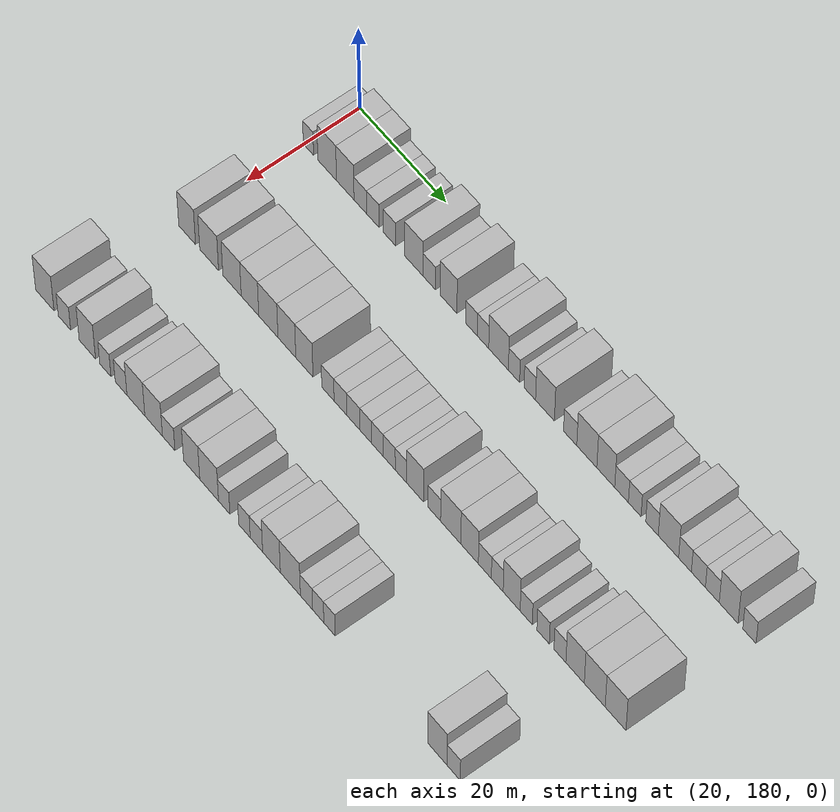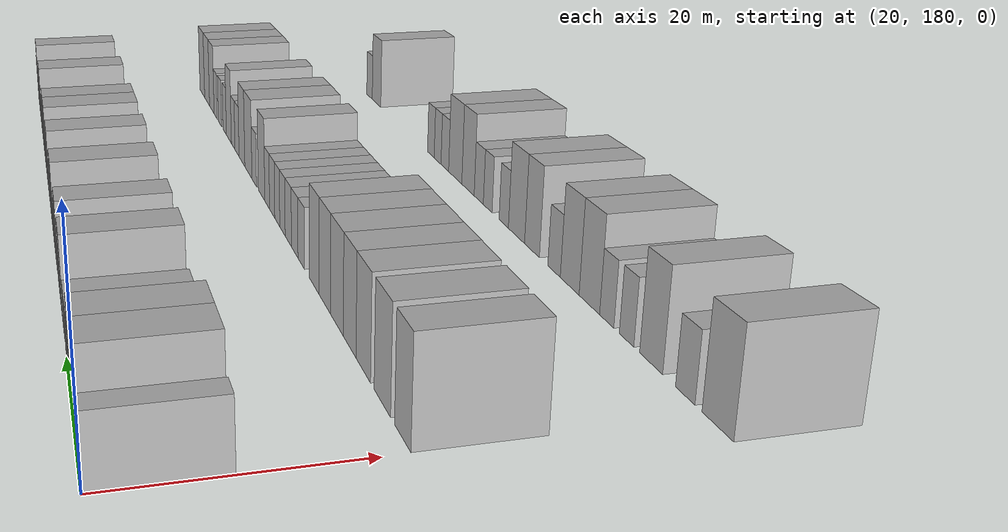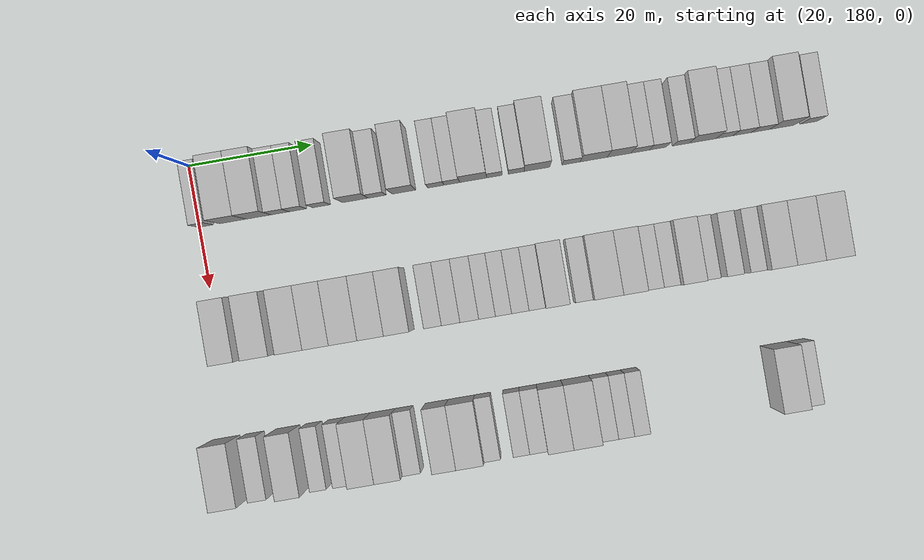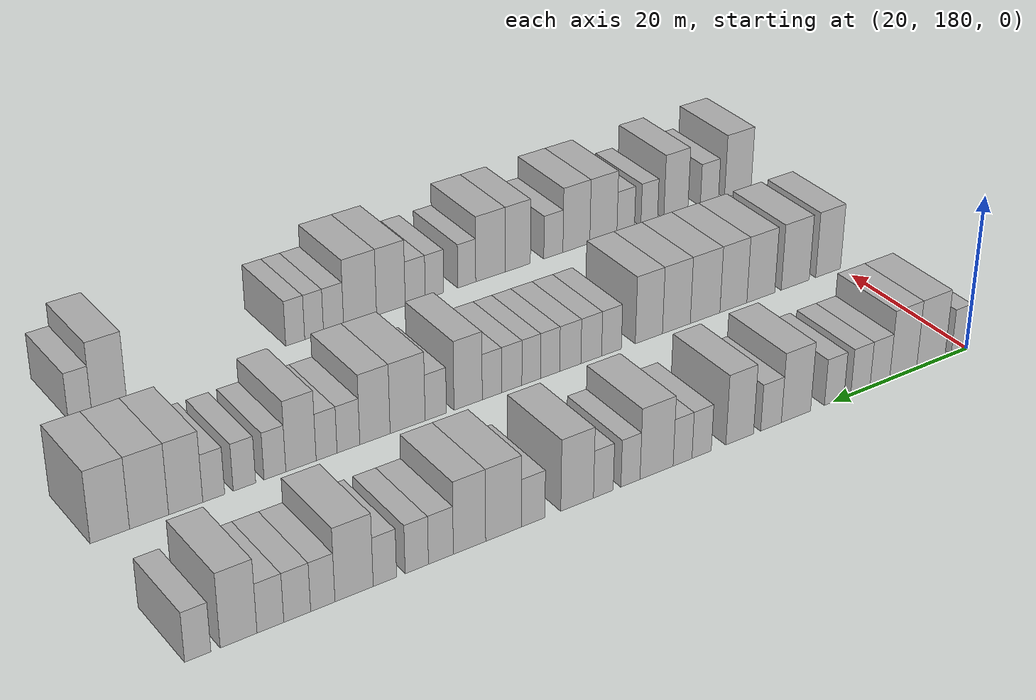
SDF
<sdf version="1.6">
 <world name="default">
  <model name="building_147">
   <static>1</static>
   <pose>25.0000 181.1279 0 0.000000 0.000000 0.000000</pose>
   <link name="link">
    <pose>0 0 3.00 0 0 0</pose>
    <collision name="collision"><geometry><box><size>10.0000 2.4109 6.0000</size></box></geometry></collision>
    <visual name="visual">
     <cast_shadows>0</cast_shadows>
     <geometry><box><size>10.0000 2.4109 6.0000</size></box></geometry>
     <material>
      <script>
       <uri>model://HANNAS_wall/materials/scripts</uri>
       <uri>model://HANNAS_wall/materials/textures</uri>
       <name>vrc/HANNAS_wall</name>
      </script>
     </material>
    </visual>
   </link>
  </model>
  <model name="building_148">
   <static>1</static>
   <pose>25.0000 185.4999 0 0.000000 0.000000 0.000000</pose>
   <link name="link">
    <pose>0 0 4.50 0 0 0</pose>
    <collision name="collision"><geometry><box><size>10.0000 4.3331 9.0000</size></box></geometry></collision>
    <visual name="visual">
     <cast_shadows>0</cast_shadows>
     <geometry><box><size>10.0000 4.3331 9.0000</size></box></geometry>
     <material>
      <script>
       <uri>model://HANNAS_wall/materials/scripts</uri>
       <uri>model://HANNAS_wall/materials/textures</uri>
       <name>vrc/HANNAS_wall</name>
      </script>
     </material>
    </visual>
   </link>
  </model>
  <model name="building_149">
   <static>1</static>
   <pose>25.0000 189.7007 0 0.000000 0.000000 0.000000</pose>
   <link name="link">
    <pose>0 0 4.50 0 0 0</pose>
    <collision name="collision"><geometry><box><size>10.0000 4.0684 9.0000</size></box></geometry></collision>
    <visual name="visual">
     <cast_shadows>0</cast_shadows>
     <geometry><box><size>10.0000 4.0684 9.0000</size></box></geometry>
     <material>
      <script>
       <uri>model://HANNAS_wall/materials/scripts</uri>
       <uri>model://HANNAS_wall/materials/textures</uri>
       <name>vrc/HANNAS_wall</name>
      </script>
     </material>
    </visual>
   </link>
  </model>
  <model name="building_150">
   <static>1</static>
   <pose>25.0000 193.2006 0 0.000000 0.000000 0.000000</pose>
   <link name="link">
    <pose>0 0 3.00 0 0 0</pose>
    <collision name="collision"><geometry><box><size>10.0000 2.9314 6.0000</size></box></geometry></collision>
    <visual name="visual">
     <cast_shadows>0</cast_shadows>
     <geometry><box><size>10.0000 2.9314 6.0000</size></box></geometry>
     <material>
      <script>
       <uri>model://HANNAS_wall/materials/scripts</uri>
       <uri>model://HANNAS_wall/materials/textures</uri>
       <name>vrc/HANNAS_wall</name>
      </script>
     </material>
    </visual>
   </link>
  </model>
  <model name="building_151">
   <static>1</static>
   <pose>25.0000 196.0848 0 0.000000 0.000000 0.000000</pose>
   <link name="link">
    <pose>0 0 3.00 0 0 0</pose>
    <collision name="collision"><geometry><box><size>10.0000 2.8371 6.0000</size></box></geometry></collision>
    <visual name="visual">
     <cast_shadows>0</cast_shadows>
     <geometry><box><size>10.0000 2.8371 6.0000</size></box></geometry>
     <material>
      <script>
       <uri>model://HANNAS_wall/materials/scripts</uri>
       <uri>model://HANNAS_wall/materials/textures</uri>
       <name>vrc/HANNAS_wall</name>
      </script>
     </material>
    </visual>
   </link>
  </model>
  <model name="building_152">
   <static>1</static>
   <pose>25.0000 199.9250 0 0.000000 0.000000 0.000000</pose>
   <link name="link">
    <pose>0 0 3.00 0 0 0</pose>
    <collision name="collision"><geometry><box><size>10.0000 2.8434 6.0000</size></box></geometry></collision>
    <visual name="visual">
     <cast_shadows>0</cast_shadows>
     <geometry><box><size>10.0000 2.8434 6.0000</size></box></geometry>
     <material>
      <script>
       <uri>model://HANNAS_wall/materials/scripts</uri>
       <uri>model://HANNAS_wall/materials/textures</uri>
       <name>vrc/HANNAS_wall</name>
      </script>
     </material>
    </visual>
   </link>
  </model>
  <model name="building_153">
   <static>1</static>
   <pose>25.0000 205.4340 0 0.000000 0.000000 0.000000</pose>
   <link name="link">
    <pose>0 0 4.50 0 0 0</pose>
    <collision name="collision"><geometry><box><size>10.0000 4.1745 9.0000</size></box></geometry></collision>
    <visual name="visual">
     <cast_shadows>0</cast_shadows>
     <geometry><box><size>10.0000 4.1745 9.0000</size></box></geometry>
     <material>
      <script>
       <uri>model://HANNAS_wall/materials/scripts</uri>
       <uri>model://HANNAS_wall/materials/textures</uri>
       <name>vrc/HANNAS_wall</name>
      </script>
     </material>
    </visual>
   </link>
  </model>
  <model name="building_154">
   <static>1</static>
   <pose>25.0000 208.9801 0 0.000000 0.000000 0.000000</pose>
   <link name="link">
    <pose>0 0 3.00 0 0 0</pose>
    <collision name="collision"><geometry><box><size>10.0000 2.9176 6.0000</size></box></geometry></collision>
    <visual name="visual">
     <cast_shadows>0</cast_shadows>
     <geometry><box><size>10.0000 2.9176 6.0000</size></box></geometry>
     <material>
      <script>
       <uri>model://HANNAS_wall/materials/scripts</uri>
       <uri>model://HANNAS_wall/materials/textures</uri>
       <name>vrc/HANNAS_wall</name>
      </script>
     </material>
    </visual>
   </link>
  </model>
  <model name="building_155">
   <static>1</static>
   <pose>25.0000 213.3540 0 0.000000 0.000000 0.000000</pose>
   <link name="link">
    <pose>0 0 4.50 0 0 0</pose>
    <collision name="collision"><geometry><box><size>10.0000 3.8302 9.0000</size></box></geometry></collision>
    <visual name="visual">
     <cast_shadows>0</cast_shadows>
     <geometry><box><size>10.0000 3.8302 9.0000</size></box></geometry>
     <material>
      <script>
       <uri>model://HANNAS_wall/materials/scripts</uri>
       <uri>model://HANNAS_wall/materials/textures</uri>
       <name>vrc/HANNAS_wall</name>
      </script>
     </material>
    </visual>
   </link>
  </model>
  <model name="building_156">
   <static>1</static>
   <pose>25.0000 218.5806 0 0.000000 0.000000 0.000000</pose>
   <link name="link">
    <pose>0 0 3.00 0 0 0</pose>
    <collision name="collision"><geometry><box><size>10.0000 2.6231 6.0000</size></box></geometry></collision>
    <visual name="visual">
     <cast_shadows>0</cast_shadows>
     <geometry><box><size>10.0000 2.6231 6.0000</size></box></geometry>
     <material>
      <script>
       <uri>model://HANNAS_wall/materials/scripts</uri>
       <uri>model://HANNAS_wall/materials/textures</uri>
       <name>vrc/HANNAS_wall</name>
      </script>
     </material>
    </visual>
   </link>
  </model>
  <model name="building_157">
   <static>1</static>
   <pose>25.0000 221.1598 0 0.000000 0.000000 0.000000</pose>
   <link name="link">
    <pose>0 0 3.00 0 0 0</pose>
    <collision name="collision"><geometry><box><size>10.0000 2.5354 6.0000</size></box></geometry></collision>
    <visual name="visual">
     <cast_shadows>0</cast_shadows>
     <geometry><box><size>10.0000 2.5354 6.0000</size></box></geometry>
     <material>
      <script>
       <uri>model://HANNAS_wall/materials/scripts</uri>
       <uri>model://HANNAS_wall/materials/textures</uri>
       <name>vrc/HANNAS_wall</name>
      </script>
     </material>
    </visual>
   </link>
  </model>
  <model name="building_158">
   <static>1</static>
   <pose>25.0000 224.6276 0 0.000000 0.000000 0.000000</pose>
   <link name="link">
    <pose>0 0 4.50 0 0 0</pose>
    <collision name="collision"><geometry><box><size>10.0000 4.4003 9.0000</size></box></geometry></collision>
    <visual name="visual">
     <cast_shadows>0</cast_shadows>
     <geometry><box><size>10.0000 4.4003 9.0000</size></box></geometry>
     <material>
      <script>
       <uri>model://HANNAS_wall/materials/scripts</uri>
       <uri>model://HANNAS_wall/materials/textures</uri>
       <name>vrc/HANNAS_wall</name>
      </script>
     </material>
    </visual>
   </link>
  </model>
  <model name="building_159">
   <static>1</static>
   <pose>25.0000 228.0786 0 0.000000 0.000000 0.000000</pose>
   <link name="link">
    <pose>0 0 3.00 0 0 0</pose>
    <collision name="collision"><geometry><box><size>10.0000 2.5018 6.0000</size></box></geometry></collision>
    <visual name="visual">
     <cast_shadows>0</cast_shadows>
     <geometry><box><size>10.0000 2.5018 6.0000</size></box></geometry>
     <material>
      <script>
       <uri>model://HANNAS_wall/materials/scripts</uri>
       <uri>model://HANNAS_wall/materials/textures</uri>
       <name>vrc/HANNAS_wall</name>
      </script>
     </material>
    </visual>
   </link>
  </model>
  <model name="building_160">
   <static>1</static>
   <pose>25.0000 231.6056 0 0.000000 0.000000 0.000000</pose>
   <link name="link">
    <pose>0 0 3.00 0 0 0</pose>
    <collision name="collision"><geometry><box><size>10.0000 2.5521 6.0000</size></box></geometry></collision>
    <visual name="visual">
     <cast_shadows>0</cast_shadows>
     <geometry><box><size>10.0000 2.5521 6.0000</size></box></geometry>
     <material>
      <script>
       <uri>model://HANNAS_wall/materials/scripts</uri>
       <uri>model://HANNAS_wall/materials/textures</uri>
       <name>vrc/HANNAS_wall</name>
      </script>
     </material>
    </visual>
   </link>
  </model>
  <model name="building_161">
   <static>1</static>
   <pose>25.0000 234.9691 0 0.000000 0.000000 0.000000</pose>
   <link name="link">
    <pose>0 0 4.50 0 0 0</pose>
    <collision name="collision"><geometry><box><size>10.0000 4.1749 9.0000</size></box></geometry></collision>
    <visual name="visual">
     <cast_shadows>0</cast_shadows>
     <geometry><box><size>10.0000 4.1749 9.0000</size></box></geometry>
     <material>
      <script>
       <uri>model://HANNAS_wall/materials/scripts</uri>
       <uri>model://HANNAS_wall/materials/textures</uri>
       <name>vrc/HANNAS_wall</name>
      </script>
     </material>
    </visual>
   </link>
  </model>
  <model name="building_162">
   <static>1</static>
   <pose>25.0000 240.5236 0 0.000000 0.000000 0.000000</pose>
   <link name="link">
    <pose>0 0 3.00 0 0 0</pose>
    <collision name="collision"><geometry><box><size>10.0000 2.9343 6.0000</size></box></geometry></collision>
    <visual name="visual">
     <cast_shadows>0</cast_shadows>
     <geometry><box><size>10.0000 2.9343 6.0000</size></box></geometry>
     <material>
      <script>
       <uri>model://HANNAS_wall/materials/scripts</uri>
       <uri>model://HANNAS_wall/materials/textures</uri>
       <name>vrc/HANNAS_wall</name>
      </script>
     </material>
    </visual>
   </link>
  </model>
  <model name="building_163">
   <static>1</static>
   <pose>25.0000 244.1888 0 0.000000 0.000000 0.000000</pose>
   <link name="link">
    <pose>0 0 4.50 0 0 0</pose>
    <collision name="collision"><geometry><box><size>10.0000 4.3960 9.0000</size></box></geometry></collision>
    <visual name="visual">
     <cast_shadows>0</cast_shadows>
     <geometry><box><size>10.0000 4.3960 9.0000</size></box></geometry>
     <material>
      <script>
       <uri>model://HANNAS_wall/materials/scripts</uri>
       <uri>model://HANNAS_wall/materials/textures</uri>
       <name>vrc/HANNAS_wall</name>
      </script>
     </material>
    </visual>
   </link>
  </model>
  <model name="building_164">
   <static>1</static>
   <pose>25.0000 248.3428 0 0.000000 0.000000 0.000000</pose>
   <link name="link">
    <pose>0 0 4.50 0 0 0</pose>
    <collision name="collision"><geometry><box><size>10.0000 3.9119 9.0000</size></box></geometry></collision>
    <visual name="visual">
     <cast_shadows>0</cast_shadows>
     <geometry><box><size>10.0000 3.9119 9.0000</size></box></geometry>
     <material>
      <script>
       <uri>model://HANNAS_wall/materials/scripts</uri>
       <uri>model://HANNAS_wall/materials/textures</uri>
       <name>vrc/HANNAS_wall</name>
      </script>
     </material>
    </visual>
   </link>
  </model>
  <model name="building_165">
   <static>1</static>
   <pose>25.0000 251.7863 0 0.000000 0.000000 0.000000</pose>
   <link name="link">
    <pose>0 0 3.00 0 0 0</pose>
    <collision name="collision"><geometry><box><size>10.0000 2.9751 6.0000</size></box></geometry></collision>
    <visual name="visual">
     <cast_shadows>0</cast_shadows>
     <geometry><box><size>10.0000 2.9751 6.0000</size></box></geometry>
     <material>
      <script>
       <uri>model://HANNAS_wall/materials/scripts</uri>
       <uri>model://HANNAS_wall/materials/textures</uri>
       <name>vrc/HANNAS_wall</name>
      </script>
     </material>
    </visual>
   </link>
  </model>
  <model name="building_166">
   <static>1</static>
   <pose>25.0000 254.6488 0 0.000000 0.000000 0.000000</pose>
   <link name="link">
    <pose>0 0 3.00 0 0 0</pose>
    <collision name="collision"><geometry><box><size>10.0000 2.7500 6.0000</size></box></geometry></collision>
    <visual name="visual">
     <cast_shadows>0</cast_shadows>
     <geometry><box><size>10.0000 2.7500 6.0000</size></box></geometry>
     <material>
      <script>
       <uri>model://HANNAS_wall/materials/scripts</uri>
       <uri>model://HANNAS_wall/materials/textures</uri>
       <name>vrc/HANNAS_wall</name>
      </script>
     </material>
    </visual>
   </link>
  </model>
  <model name="building_167">
   <static>1</static>
   <pose>25.0000 258.3813 0 0.000000 0.000000 0.000000</pose>
   <link name="link">
    <pose>0 0 3.00 0 0 0</pose>
    <collision name="collision"><geometry><box><size>10.0000 2.7150 6.0000</size></box></geometry></collision>
    <visual name="visual">
     <cast_shadows>0</cast_shadows>
     <geometry><box><size>10.0000 2.7150 6.0000</size></box></geometry>
     <material>
      <script>
       <uri>model://HANNAS_wall/materials/scripts</uri>
       <uri>model://HANNAS_wall/materials/textures</uri>
       <name>vrc/HANNAS_wall</name>
      </script>
     </material>
    </visual>
   </link>
  </model>
  <model name="building_168">
   <static>1</static>
   <pose>25.0000 261.9327 0 0.000000 0.000000 0.000000</pose>
   <link name="link">
    <pose>0 0 4.50 0 0 0</pose>
    <collision name="collision"><geometry><box><size>10.0000 4.3878 9.0000</size></box></geometry></collision>
    <visual name="visual">
     <cast_shadows>0</cast_shadows>
     <geometry><box><size>10.0000 4.3878 9.0000</size></box></geometry>
     <material>
      <script>
       <uri>model://HANNAS_wall/materials/scripts</uri>
       <uri>model://HANNAS_wall/materials/textures</uri>
       <name>vrc/HANNAS_wall</name>
      </script>
     </material>
    </visual>
   </link>
  </model>
  <model name="building_169">
   <static>1</static>
   <pose>25.0000 265.4963 0 0.000000 0.000000 0.000000</pose>
   <link name="link">
    <pose>0 0 3.00 0 0 0</pose>
    <collision name="collision"><geometry><box><size>10.0000 2.7393 6.0000</size></box></geometry></collision>
    <visual name="visual">
     <cast_shadows>0</cast_shadows>
     <geometry><box><size>10.0000 2.7393 6.0000</size></box></geometry>
     <material>
      <script>
       <uri>model://HANNAS_wall/materials/scripts</uri>
       <uri>model://HANNAS_wall/materials/textures</uri>
       <name>vrc/HANNAS_wall</name>
      </script>
     </material>
    </visual>
   </link>
  </model>
  <model name="building_170">
   <static>1</static>
   <pose>25.0000 268.3650 0 0.000000 0.000000 0.000000</pose>
   <link name="link">
    <pose>0 0 3.00 0 0 0</pose>
    <collision name="collision"><geometry><box><size>10.0000 2.9982 6.0000</size></box></geometry></collision>
    <visual name="visual">
     <cast_shadows>0</cast_shadows>
     <geometry><box><size>10.0000 2.9982 6.0000</size></box></geometry>
     <material>
      <script>
       <uri>model://HANNAS_wall/materials/scripts</uri>
       <uri>model://HANNAS_wall/materials/textures</uri>
       <name>vrc/HANNAS_wall</name>
      </script>
     </material>
    </visual>
   </link>
  </model>
  <model name="building_171">
   <static>1</static>
   <pose>25.0000 271.3401 0 0.000000 0.000000 0.000000</pose>
   <link name="link">
    <pose>0 0 3.00 0 0 0</pose>
    <collision name="collision"><geometry><box><size>10.0000 2.9520 6.0000</size></box></geometry></collision>
    <visual name="visual">
     <cast_shadows>0</cast_shadows>
     <geometry><box><size>10.0000 2.9520 6.0000</size></box></geometry>
     <material>
      <script>
       <uri>model://HANNAS_wall/materials/scripts</uri>
       <uri>model://HANNAS_wall/materials/textures</uri>
       <name>vrc/HANNAS_wall</name>
      </script>
     </material>
    </visual>
   </link>
  </model>
  <model name="building_172">
   <static>1</static>
   <pose>25.0000 274.8173 0 0.000000 0.000000 0.000000</pose>
   <link name="link">
    <pose>0 0 4.50 0 0 0</pose>
    <collision name="collision"><geometry><box><size>10.0000 4.0024 9.0000</size></box></geometry></collision>
    <visual name="visual">
     <cast_shadows>0</cast_shadows>
     <geometry><box><size>10.0000 4.0024 9.0000</size></box></geometry>
     <material>
      <script>
       <uri>model://HANNAS_wall/materials/scripts</uri>
       <uri>model://HANNAS_wall/materials/textures</uri>
       <name>vrc/HANNAS_wall</name>
      </script>
     </material>
    </visual>
   </link>
  </model>
  <model name="building_173">
   <static>1</static>
   <pose>25.0000 279.2240 0 0.000000 0.000000 0.000000</pose>
   <link name="link">
    <pose>0 0 3.00 0 0 0</pose>
    <collision name="collision"><geometry><box><size>10.0000 2.8110 6.0000</size></box></geometry></collision>
    <visual name="visual">
     <cast_shadows>0</cast_shadows>
     <geometry><box><size>10.0000 2.8110 6.0000</size></box></geometry>
     <material>
      <script>
       <uri>model://HANNAS_wall/materials/scripts</uri>
       <uri>model://HANNAS_wall/materials/textures</uri>
       <name>vrc/HANNAS_wall</name>
      </script>
     </material>
    </visual>
   </link>
  </model>
  <model name="building_342">
   <static>1</static>
   <pose>47.0000 182.0934 0 0.000000 0.000000 0.000000</pose>
   <link name="link">
    <pose>0 0 4.50 0 0 0</pose>
    <collision name="collision"><geometry><box><size>10.0000 3.9305 9.0000</size></box></geometry></collision>
    <visual name="visual">
     <cast_shadows>0</cast_shadows>
     <geometry><box><size>10.0000 3.9305 9.0000</size></box></geometry>
     <material>
      <script>
       <uri>model://HANNAS_wall/materials/scripts</uri>
       <uri>model://HANNAS_wall/materials/textures</uri>
       <name>vrc/HANNAS_wall</name>
      </script>
     </material>
    </visual>
   </link>
  </model>
  <model name="building_343">
   <static>1</static>
   <pose>47.0000 187.2552 0 0.000000 0.000000 0.000000</pose>
   <link name="link">
    <pose>0 0 4.50 0 0 0</pose>
    <collision name="collision"><geometry><box><size>10.0000 4.3931 9.0000</size></box></geometry></collision>
    <visual name="visual">
     <cast_shadows>0</cast_shadows>
     <geometry><box><size>10.0000 4.3931 9.0000</size></box></geometry>
     <material>
      <script>
       <uri>model://HANNAS_wall/materials/scripts</uri>
       <uri>model://HANNAS_wall/materials/textures</uri>
       <name>vrc/HANNAS_wall</name>
      </script>
     </material>
    </visual>
   </link>
  </model>
  <model name="building_344">
   <static>1</static>
   <pose>47.0000 192.5913 0 0.000000 0.000000 0.000000</pose>
   <link name="link">
    <pose>0 0 4.50 0 0 0</pose>
    <collision name="collision"><geometry><box><size>10.0000 4.2791 9.0000</size></box></geometry></collision>
    <visual name="visual">
     <cast_shadows>0</cast_shadows>
     <geometry><box><size>10.0000 4.2791 9.0000</size></box></geometry>
     <material>
      <script>
       <uri>model://HANNAS_wall/materials/scripts</uri>
       <uri>model://HANNAS_wall/materials/textures</uri>
       <name>vrc/HANNAS_wall</name>
      </script>
     </material>
    </visual>
   </link>
  </model>
  <model name="building_345">
   <static>1</static>
   <pose>47.0000 196.7664 0 0.000000 0.000000 0.000000</pose>
   <link name="link">
    <pose>0 0 4.50 0 0 0</pose>
    <collision name="collision"><geometry><box><size>10.0000 4.0711 9.0000</size></box></geometry></collision>
    <visual name="visual">
     <cast_shadows>0</cast_shadows>
     <geometry><box><size>10.0000 4.0711 9.0000</size></box></geometry>
     <material>
      <script>
       <uri>model://HANNAS_wall/materials/scripts</uri>
       <uri>model://HANNAS_wall/materials/textures</uri>
       <name>vrc/HANNAS_wall</name>
      </script>
     </material>
    </visual>
   </link>
  </model>
  <model name="building_346">
   <static>1</static>
   <pose>47.0000 201.0118 0 0.000000 0.000000 0.000000</pose>
   <link name="link">
    <pose>0 0 4.50 0 0 0</pose>
    <collision name="collision"><geometry><box><size>10.0000 4.4196 9.0000</size></box></geometry></collision>
    <visual name="visual">
     <cast_shadows>0</cast_shadows>
     <geometry><box><size>10.0000 4.4196 9.0000</size></box></geometry>
     <material>
      <script>
       <uri>model://HANNAS_wall/materials/scripts</uri>
       <uri>model://HANNAS_wall/materials/textures</uri>
       <name>vrc/HANNAS_wall</name>
      </script>
     </material>
    </visual>
   </link>
  </model>
  <model name="building_347">
   <static>1</static>
   <pose>47.0000 205.2646 0 0.000000 0.000000 0.000000</pose>
   <link name="link">
    <pose>0 0 4.50 0 0 0</pose>
    <collision name="collision"><geometry><box><size>10.0000 4.0861 9.0000</size></box></geometry></collision>
    <visual name="visual">
     <cast_shadows>0</cast_shadows>
     <geometry><box><size>10.0000 4.0861 9.0000</size></box></geometry>
     <material>
      <script>
       <uri>model://HANNAS_wall/materials/scripts</uri>
       <uri>model://HANNAS_wall/materials/textures</uri>
       <name>vrc/HANNAS_wall</name>
      </script>
     </material>
    </visual>
   </link>
  </model>
  <model name="building_348">
   <static>1</static>
   <pose>47.0000 209.2741 0 0.000000 0.000000 0.000000</pose>
   <link name="link">
    <pose>0 0 4.50 0 0 0</pose>
    <collision name="collision"><geometry><box><size>10.0000 3.9331 9.0000</size></box></geometry></collision>
    <visual name="visual">
     <cast_shadows>0</cast_shadows>
     <geometry><box><size>10.0000 3.9331 9.0000</size></box></geometry>
     <material>
      <script>
       <uri>model://HANNAS_wall/materials/scripts</uri>
       <uri>model://HANNAS_wall/materials/textures</uri>
       <name>vrc/HANNAS_wall</name>
      </script>
     </material>
    </visual>
   </link>
  </model>
  <model name="building_349">
   <static>1</static>
   <pose>47.0000 214.6438 0 0.000000 0.000000 0.000000</pose>
   <link name="link">
    <pose>0 0 3.00 0 0 0</pose>
    <collision name="collision"><geometry><box><size>10.0000 2.8062 6.0000</size></box></geometry></collision>
    <visual name="visual">
     <cast_shadows>0</cast_shadows>
     <geometry><box><size>10.0000 2.8062 6.0000</size></box></geometry>
     <material>
      <script>
       <uri>model://HANNAS_wall/materials/scripts</uri>
       <uri>model://HANNAS_wall/materials/textures</uri>
       <name>vrc/HANNAS_wall</name>
      </script>
     </material>
    </visual>
   </link>
  </model>
  <model name="building_350">
   <static>1</static>
   <pose>47.0000 217.5046 0 0.000000 0.000000 0.000000</pose>
   <link name="link">
    <pose>0 0 3.00 0 0 0</pose>
    <collision name="collision"><geometry><box><size>10.0000 2.9155 6.0000</size></box></geometry></collision>
    <visual name="visual">
     <cast_shadows>0</cast_shadows>
     <geometry><box><size>10.0000 2.9155 6.0000</size></box></geometry>
     <material>
      <script>
       <uri>model://HANNAS_wall/materials/scripts</uri>
       <uri>model://HANNAS_wall/materials/textures</uri>
       <name>vrc/HANNAS_wall</name>
      </script>
     </material>
    </visual>
   </link>
  </model>
  <model name="building_351">
   <static>1</static>
   <pose>47.0000 220.4396 0 0.000000 0.000000 0.000000</pose>
   <link name="link">
    <pose>0 0 3.00 0 0 0</pose>
    <collision name="collision"><geometry><box><size>10.0000 2.9545 6.0000</size></box></geometry></collision>
    <visual name="visual">
     <cast_shadows>0</cast_shadows>
     <geometry><box><size>10.0000 2.9545 6.0000</size></box></geometry>
     <material>
      <script>
       <uri>model://HANNAS_wall/materials/scripts</uri>
       <uri>model://HANNAS_wall/materials/textures</uri>
       <name>vrc/HANNAS_wall</name>
      </script>
     </material>
    </visual>
   </link>
  </model>
  <model name="building_352">
   <static>1</static>
   <pose>47.0000 223.2336 0 0.000000 0.000000 0.000000</pose>
   <link name="link">
    <pose>0 0 3.00 0 0 0</pose>
    <collision name="collision"><geometry><box><size>10.0000 2.6336 6.0000</size></box></geometry></collision>
    <visual name="visual">
     <cast_shadows>0</cast_shadows>
     <geometry><box><size>10.0000 2.6336 6.0000</size></box></geometry>
     <material>
      <script>
       <uri>model://HANNAS_wall/materials/scripts</uri>
       <uri>model://HANNAS_wall/materials/textures</uri>
       <name>vrc/HANNAS_wall</name>
      </script>
     </material>
    </visual>
   </link>
  </model>
  <model name="building_353">
   <static>1</static>
   <pose>47.0000 225.8243 0 0.000000 0.000000 0.000000</pose>
   <link name="link">
    <pose>0 0 3.00 0 0 0</pose>
    <collision name="collision"><geometry><box><size>10.0000 2.5477 6.0000</size></box></geometry></collision>
    <visual name="visual">
     <cast_shadows>0</cast_shadows>
     <geometry><box><size>10.0000 2.5477 6.0000</size></box></geometry>
     <material>
      <script>
       <uri>model://HANNAS_wall/materials/scripts</uri>
       <uri>model://HANNAS_wall/materials/textures</uri>
       <name>vrc/HANNAS_wall</name>
      </script>
     </material>
    </visual>
   </link>
  </model>
  <model name="building_354">
   <static>1</static>
   <pose>47.0000 228.4697 0 0.000000 0.000000 0.000000</pose>
   <link name="link">
    <pose>0 0 3.00 0 0 0</pose>
    <collision name="collision"><geometry><box><size>10.0000 2.7431 6.0000</size></box></geometry></collision>
    <visual name="visual">
     <cast_shadows>0</cast_shadows>
     <geometry><box><size>10.0000 2.7431 6.0000</size></box></geometry>
     <material>
      <script>
       <uri>model://HANNAS_wall/materials/scripts</uri>
       <uri>model://HANNAS_wall/materials/textures</uri>
       <name>vrc/HANNAS_wall</name>
      </script>
     </material>
    </visual>
   </link>
  </model>
  <model name="building_355">
   <static>1</static>
   <pose>47.0000 231.1359 0 0.000000 0.000000 0.000000</pose>
   <link name="link">
    <pose>0 0 3.00 0 0 0</pose>
    <collision name="collision"><geometry><box><size>10.0000 2.5893 6.0000</size></box></geometry></collision>
    <visual name="visual">
     <cast_shadows>0</cast_shadows>
     <geometry><box><size>10.0000 2.5893 6.0000</size></box></geometry>
     <material>
      <script>
       <uri>model://HANNAS_wall/materials/scripts</uri>
       <uri>model://HANNAS_wall/materials/textures</uri>
       <name>vrc/HANNAS_wall</name>
      </script>
     </material>
    </visual>
   </link>
  </model>
  <model name="building_356">
   <static>1</static>
   <pose>47.0000 234.2995 0 0.000000 0.000000 0.000000</pose>
   <link name="link">
    <pose>0 0 4.50 0 0 0</pose>
    <collision name="collision"><geometry><box><size>10.0000 3.7380 9.0000</size></box></geometry></collision>
    <visual name="visual">
     <cast_shadows>0</cast_shadows>
     <geometry><box><size>10.0000 3.7380 9.0000</size></box></geometry>
     <material>
      <script>
       <uri>model://HANNAS_wall/materials/scripts</uri>
       <uri>model://HANNAS_wall/materials/textures</uri>
       <name>vrc/HANNAS_wall</name>
      </script>
     </material>
    </visual>
   </link>
  </model>
  <model name="building_357">
   <static>1</static>
   <pose>47.0000 238.5541 0 0.000000 0.000000 0.000000</pose>
   <link name="link">
    <pose>0 0 3.00 0 0 0</pose>
    <collision name="collision"><geometry><box><size>10.0000 2.7713 6.0000</size></box></geometry></collision>
    <visual name="visual">
     <cast_shadows>0</cast_shadows>
     <geometry><box><size>10.0000 2.7713 6.0000</size></box></geometry>
     <material>
      <script>
       <uri>model://HANNAS_wall/materials/scripts</uri>
       <uri>model://HANNAS_wall/materials/textures</uri>
       <name>vrc/HANNAS_wall</name>
      </script>
     </material>
    </visual>
   </link>
  </model>
  <model name="building_358">
   <static>1</static>
   <pose>47.0000 242.1877 0 0.000000 0.000000 0.000000</pose>
   <link name="link">
    <pose>0 0 4.50 0 0 0</pose>
    <collision name="collision"><geometry><box><size>10.0000 4.4958 9.0000</size></box></geometry></collision>
    <visual name="visual">
     <cast_shadows>0</cast_shadows>
     <geometry><box><size>10.0000 4.4958 9.0000</size></box></geometry>
     <material>
      <script>
       <uri>model://HANNAS_wall/materials/scripts</uri>
       <uri>model://HANNAS_wall/materials/textures</uri>
       <name>vrc/HANNAS_wall</name>
      </script>
     </material>
    </visual>
   </link>
  </model>
  <model name="building_359">
   <static>1</static>
   <pose>47.0000 246.3567 0 0.000000 0.000000 0.000000</pose>
   <link name="link">
    <pose>0 0 4.50 0 0 0</pose>
    <collision name="collision"><geometry><box><size>10.0000 3.8422 9.0000</size></box></geometry></collision>
    <visual name="visual">
     <cast_shadows>0</cast_shadows>
     <geometry><box><size>10.0000 3.8422 9.0000</size></box></geometry>
     <material>
      <script>
       <uri>model://HANNAS_wall/materials/scripts</uri>
       <uri>model://HANNAS_wall/materials/textures</uri>
       <name>vrc/HANNAS_wall</name>
      </script>
     </material>
    </visual>
   </link>
  </model>
  <model name="building_360">
   <static>1</static>
   <pose>47.0000 249.6998 0 0.000000 0.000000 0.000000</pose>
   <link name="link">
    <pose>0 0 3.00 0 0 0</pose>
    <collision name="collision"><geometry><box><size>10.0000 2.8440 6.0000</size></box></geometry></collision>
    <visual name="visual">
     <cast_shadows>0</cast_shadows>
     <geometry><box><size>10.0000 2.8440 6.0000</size></box></geometry>
     <material>
      <script>
       <uri>model://HANNAS_wall/materials/scripts</uri>
       <uri>model://HANNAS_wall/materials/textures</uri>
       <name>vrc/HANNAS_wall</name>
      </script>
     </material>
    </visual>
   </link>
  </model>
  <model name="building_361">
   <static>1</static>
   <pose>47.0000 252.4160 0 0.000000 0.000000 0.000000</pose>
   <link name="link">
    <pose>0 0 3.00 0 0 0</pose>
    <collision name="collision"><geometry><box><size>10.0000 2.5884 6.0000</size></box></geometry></collision>
    <visual name="visual">
     <cast_shadows>0</cast_shadows>
     <geometry><box><size>10.0000 2.5884 6.0000</size></box></geometry>
     <material>
      <script>
       <uri>model://HANNAS_wall/materials/scripts</uri>
       <uri>model://HANNAS_wall/materials/textures</uri>
       <name>vrc/HANNAS_wall</name>
      </script>
     </material>
    </visual>
   </link>
  </model>
  <model name="building_362">
   <static>1</static>
   <pose>47.0000 255.5669 0 0.000000 0.000000 0.000000</pose>
   <link name="link">
    <pose>0 0 4.50 0 0 0</pose>
    <collision name="collision"><geometry><box><size>10.0000 3.7134 9.0000</size></box></geometry></collision>
    <visual name="visual">
     <cast_shadows>0</cast_shadows>
     <geometry><box><size>10.0000 3.7134 9.0000</size></box></geometry>
     <material>
      <script>
       <uri>model://HANNAS_wall/materials/scripts</uri>
       <uri>model://HANNAS_wall/materials/textures</uri>
       <name>vrc/HANNAS_wall</name>
      </script>
     </material>
    </visual>
   </link>
  </model>
  <model name="building_363">
   <static>1</static>
   <pose>47.0000 258.7400 0 0.000000 0.000000 0.000000</pose>
   <link name="link">
    <pose>0 0 3.00 0 0 0</pose>
    <collision name="collision"><geometry><box><size>10.0000 2.6329 6.0000</size></box></geometry></collision>
    <visual name="visual">
     <cast_shadows>0</cast_shadows>
     <geometry><box><size>10.0000 2.6329 6.0000</size></box></geometry>
     <material>
      <script>
       <uri>model://HANNAS_wall/materials/scripts</uri>
       <uri>model://HANNAS_wall/materials/textures</uri>
       <name>vrc/HANNAS_wall</name>
      </script>
     </material>
    </visual>
   </link>
  </model>
  <model name="building_364">
   <static>1</static>
   <pose>47.0000 262.3987 0 0.000000 0.000000 0.000000</pose>
   <link name="link">
    <pose>0 0 3.00 0 0 0</pose>
    <collision name="collision"><geometry><box><size>10.0000 2.6845 6.0000</size></box></geometry></collision>
    <visual name="visual">
     <cast_shadows>0</cast_shadows>
     <geometry><box><size>10.0000 2.6845 6.0000</size></box></geometry>
     <material>
      <script>
       <uri>model://HANNAS_wall/materials/scripts</uri>
       <uri>model://HANNAS_wall/materials/textures</uri>
       <name>vrc/HANNAS_wall</name>
      </script>
     </material>
    </visual>
   </link>
  </model>
  <model name="building_365">
   <static>1</static>
   <pose>47.0000 266.0286 0 0.000000 0.000000 0.000000</pose>
   <link name="link">
    <pose>0 0 3.00 0 0 0</pose>
    <collision name="collision"><geometry><box><size>10.0000 2.5752 6.0000</size></box></geometry></collision>
    <visual name="visual">
     <cast_shadows>0</cast_shadows>
     <geometry><box><size>10.0000 2.5752 6.0000</size></box></geometry>
     <material>
      <script>
       <uri>model://HANNAS_wall/materials/scripts</uri>
       <uri>model://HANNAS_wall/materials/textures</uri>
       <name>vrc/HANNAS_wall</name>
      </script>
     </material>
    </visual>
   </link>
  </model>
  <model name="building_366">
   <static>1</static>
   <pose>47.0000 269.2981 0 0.000000 0.000000 0.000000</pose>
   <link name="link">
    <pose>0 0 4.50 0 0 0</pose>
    <collision name="collision"><geometry><box><size>10.0000 3.9639 9.0000</size></box></geometry></collision>
    <visual name="visual">
     <cast_shadows>0</cast_shadows>
     <geometry><box><size>10.0000 3.9639 9.0000</size></box></geometry>
     <material>
      <script>
       <uri>model://HANNAS_wall/materials/scripts</uri>
       <uri>model://HANNAS_wall/materials/textures</uri>
       <name>vrc/HANNAS_wall</name>
      </script>
     </material>
    </visual>
   </link>
  </model>
  <model name="building_367">
   <static>1</static>
   <pose>47.0000 273.5116 0 0.000000 0.000000 0.000000</pose>
   <link name="link">
    <pose>0 0 4.50 0 0 0</pose>
    <collision name="collision"><geometry><box><size>10.0000 4.4630 9.0000</size></box></geometry></collision>
    <visual name="visual">
     <cast_shadows>0</cast_shadows>
     <geometry><box><size>10.0000 4.4630 9.0000</size></box></geometry>
     <material>
      <script>
       <uri>model://HANNAS_wall/materials/scripts</uri>
       <uri>model://HANNAS_wall/materials/textures</uri>
       <name>vrc/HANNAS_wall</name>
      </script>
     </material>
    </visual>
   </link>
  </model>
  <model name="building_368">
   <static>1</static>
   <pose>47.0000 277.9598 0 0.000000 0.000000 0.000000</pose>
   <link name="link">
    <pose>0 0 4.50 0 0 0</pose>
    <collision name="collision"><geometry><box><size>10.0000 4.4333 9.0000</size></box></geometry></collision>
    <visual name="visual">
     <cast_shadows>0</cast_shadows>
     <geometry><box><size>10.0000 4.4333 9.0000</size></box></geometry>
     <material>
      <script>
       <uri>model://HANNAS_wall/materials/scripts</uri>
       <uri>model://HANNAS_wall/materials/textures</uri>
       <name>vrc/HANNAS_wall</name>
      </script>
     </material>
    </visual>
   </link>
  </model>
  <model name="building_530">
   <static>1</static>
   <pose>69.0000 178.5882 0 0.000000 0.000000 0.000000</pose>
   <link name="link">
    <pose>0 0 4.50 0 0 0</pose>
    <collision name="collision"><geometry><box><size>10.0000 4.3651 9.0000</size></box></geometry></collision>
    <visual name="visual">
     <cast_shadows>0</cast_shadows>
     <geometry><box><size>10.0000 4.3651 9.0000</size></box></geometry>
     <material>
      <script>
       <uri>model://HANNAS_wall/materials/scripts</uri>
       <uri>model://HANNAS_wall/materials/textures</uri>
       <name>vrc/HANNAS_wall</name>
      </script>
     </material>
    </visual>
   </link>
  </model>
  <model name="building_531">
   <static>1</static>
   <pose>69.0000 183.2382 0 0.000000 0.000000 0.000000</pose>
   <link name="link">
    <pose>0 0 3.00 0 0 0</pose>
    <collision name="collision"><geometry><box><size>10.0000 2.9348 6.0000</size></box></geometry></collision>
    <visual name="visual">
     <cast_shadows>0</cast_shadows>
     <geometry><box><size>10.0000 2.9348 6.0000</size></box></geometry>
     <material>
      <script>
       <uri>model://HANNAS_wall/materials/scripts</uri>
       <uri>model://HANNAS_wall/materials/textures</uri>
       <name>vrc/HANNAS_wall</name>
      </script>
     </material>
    </visual>
   </link>
  </model>
  <model name="building_532">
   <static>1</static>
   <pose>69.0000 188.6274 0 0.000000 0.000000 0.000000</pose>
   <link name="link">
    <pose>0 0 4.50 0 0 0</pose>
    <collision name="collision"><geometry><box><size>10.0000 3.8436 9.0000</size></box></geometry></collision>
    <visual name="visual">
     <cast_shadows>0</cast_shadows>
     <geometry><box><size>10.0000 3.8436 9.0000</size></box></geometry>
     <material>
      <script>
       <uri>model://HANNAS_wall/materials/scripts</uri>
       <uri>model://HANNAS_wall/materials/textures</uri>
       <name>vrc/HANNAS_wall</name>
      </script>
     </material>
    </visual>
   </link>
  </model>
  <model name="building_533">
   <static>1</static>
   <pose>69.0000 192.8554 0 0.000000 0.000000 0.000000</pose>
   <link name="link">
    <pose>0 0 3.00 0 0 0</pose>
    <collision name="collision"><geometry><box><size>10.0000 2.6125 6.0000</size></box></geometry></collision>
    <visual name="visual">
     <cast_shadows>0</cast_shadows>
     <geometry><box><size>10.0000 2.6125 6.0000</size></box></geometry>
     <material>
      <script>
       <uri>model://HANNAS_wall/materials/scripts</uri>
       <uri>model://HANNAS_wall/materials/textures</uri>
       <name>vrc/HANNAS_wall</name>
      </script>
     </material>
    </visual>
   </link>
  </model>
  <model name="building_534">
   <static>1</static>
   <pose>69.0000 196.5294 0 0.000000 0.000000 0.000000</pose>
   <link name="link">
    <pose>0 0 3.00 0 0 0</pose>
    <collision name="collision"><geometry><box><size>10.0000 2.7355 6.0000</size></box></geometry></collision>
    <visual name="visual">
     <cast_shadows>0</cast_shadows>
     <geometry><box><size>10.0000 2.7355 6.0000</size></box></geometry>
     <material>
      <script>
       <uri>model://HANNAS_wall/materials/scripts</uri>
       <uri>model://HANNAS_wall/materials/textures</uri>
       <name>vrc/HANNAS_wall</name>
      </script>
     </material>
    </visual>
   </link>
  </model>
  <model name="building_535">
   <static>1</static>
   <pose>69.0000 199.9775 0 0.000000 0.000000 0.000000</pose>
   <link name="link">
    <pose>0 0 4.50 0 0 0</pose>
    <collision name="collision"><geometry><box><size>10.0000 4.1608 9.0000</size></box></geometry></collision>
    <visual name="visual">
     <cast_shadows>0</cast_shadows>
     <geometry><box><size>10.0000 4.1608 9.0000</size></box></geometry>
     <material>
      <script>
       <uri>model://HANNAS_wall/materials/scripts</uri>
       <uri>model://HANNAS_wall/materials/textures</uri>
       <name>vrc/HANNAS_wall</name>
      </script>
     </material>
    </visual>
   </link>
  </model>
  <model name="building_536">
   <static>1</static>
   <pose>69.0000 204.0982 0 0.000000 0.000000 0.000000</pose>
   <link name="link">
    <pose>0 0 4.50 0 0 0</pose>
    <collision name="collision"><geometry><box><size>10.0000 4.0805 9.0000</size></box></geometry></collision>
    <visual name="visual">
     <cast_shadows>0</cast_shadows>
     <geometry><box><size>10.0000 4.0805 9.0000</size></box></geometry>
     <material>
      <script>
       <uri>model://HANNAS_wall/materials/scripts</uri>
       <uri>model://HANNAS_wall/materials/textures</uri>
       <name>vrc/HANNAS_wall</name>
      </script>
     </material>
    </visual>
   </link>
  </model>
  <model name="building_537">
   <static>1</static>
   <pose>69.0000 207.5700 0 0.000000 0.000000 0.000000</pose>
   <link name="link">
    <pose>0 0 3.00 0 0 0</pose>
    <collision name="collision"><geometry><box><size>10.0000 2.8631 6.0000</size></box></geometry></collision>
    <visual name="visual">
     <cast_shadows>0</cast_shadows>
     <geometry><box><size>10.0000 2.8631 6.0000</size></box></geometry>
     <material>
      <script>
       <uri>model://HANNAS_wall/materials/scripts</uri>
       <uri>model://HANNAS_wall/materials/textures</uri>
       <name>vrc/HANNAS_wall</name>
      </script>
     </material>
    </visual>
   </link>
  </model>
  <model name="building_538">
   <static>1</static>
   <pose>69.0000 212.8530 0 0.000000 0.000000 0.000000</pose>
   <link name="link">
    <pose>0 0 4.50 0 0 0</pose>
    <collision name="collision"><geometry><box><size>10.0000 3.7030 9.0000</size></box></geometry></collision>
    <visual name="visual">
     <cast_shadows>0</cast_shadows>
     <geometry><box><size>10.0000 3.7030 9.0000</size></box></geometry>
     <material>
      <script>
       <uri>model://HANNAS_wall/materials/scripts</uri>
       <uri>model://HANNAS_wall/materials/textures</uri>
       <name>vrc/HANNAS_wall</name>
      </script>
     </material>
    </visual>
   </link>
  </model>
  <model name="building_539">
   <static>1</static>
   <pose>69.0000 216.8475 0 0.000000 0.000000 0.000000</pose>
   <link name="link">
    <pose>0 0 4.50 0 0 0</pose>
    <collision name="collision"><geometry><box><size>10.0000 4.2860 9.0000</size></box></geometry></collision>
    <visual name="visual">
     <cast_shadows>0</cast_shadows>
     <geometry><box><size>10.0000 4.2860 9.0000</size></box></geometry>
     <material>
      <script>
       <uri>model://HANNAS_wall/materials/scripts</uri>
       <uri>model://HANNAS_wall/materials/textures</uri>
       <name>vrc/HANNAS_wall</name>
      </script>
     </material>
    </visual>
   </link>
  </model>
  <model name="building_540">
   <static>1</static>
   <pose>69.0000 220.2838 0 0.000000 0.000000 0.000000</pose>
   <link name="link">
    <pose>0 0 3.00 0 0 0</pose>
    <collision name="collision"><geometry><box><size>10.0000 2.5868 6.0000</size></box></geometry></collision>
    <visual name="visual">
     <cast_shadows>0</cast_shadows>
     <geometry><box><size>10.0000 2.5868 6.0000</size></box></geometry>
     <material>
      <script>
       <uri>model://HANNAS_wall/materials/scripts</uri>
       <uri>model://HANNAS_wall/materials/textures</uri>
       <name>vrc/HANNAS_wall</name>
      </script>
     </material>
    </visual>
   </link>
  </model>
  <model name="building_541">
   <static>1</static>
   <pose>69.0000 224.8787 0 0.000000 0.000000 0.000000</pose>
   <link name="link">
    <pose>0 0 3.00 0 0 0</pose>
    <collision name="collision"><geometry><box><size>10.0000 2.6030 6.0000</size></box></geometry></collision>
    <visual name="visual">
     <cast_shadows>0</cast_shadows>
     <geometry><box><size>10.0000 2.6030 6.0000</size></box></geometry>
     <material>
      <script>
       <uri>model://HANNAS_wall/materials/scripts</uri>
       <uri>model://HANNAS_wall/materials/textures</uri>
       <name>vrc/HANNAS_wall</name>
      </script>
     </material>
    </visual>
   </link>
  </model>
  <model name="building_542">
   <static>1</static>
   <pose>69.0000 227.5861 0 0.000000 0.000000 0.000000</pose>
   <link name="link">
    <pose>0 0 3.00 0 0 0</pose>
    <collision name="collision"><geometry><box><size>10.0000 2.8118 6.0000</size></box></geometry></collision>
    <visual name="visual">
     <cast_shadows>0</cast_shadows>
     <geometry><box><size>10.0000 2.8118 6.0000</size></box></geometry>
     <material>
      <script>
       <uri>model://HANNAS_wall/materials/scripts</uri>
       <uri>model://HANNAS_wall/materials/textures</uri>
       <name>vrc/HANNAS_wall</name>
      </script>
     </material>
    </visual>
   </link>
  </model>
  <model name="building_543">
   <static>1</static>
   <pose>69.0000 230.9838 0 0.000000 0.000000 0.000000</pose>
   <link name="link">
    <pose>0 0 4.50 0 0 0</pose>
    <collision name="collision"><geometry><box><size>10.0000 3.9838 9.0000</size></box></geometry></collision>
    <visual name="visual">
     <cast_shadows>0</cast_shadows>
     <geometry><box><size>10.0000 3.9838 9.0000</size></box></geometry>
     <material>
      <script>
       <uri>model://HANNAS_wall/materials/scripts</uri>
       <uri>model://HANNAS_wall/materials/textures</uri>
       <name>vrc/HANNAS_wall</name>
      </script>
     </material>
    </visual>
   </link>
  </model>
  <model name="building_544">
   <static>1</static>
   <pose>69.0000 235.2224 0 0.000000 0.000000 0.000000</pose>
   <link name="link">
    <pose>0 0 4.50 0 0 0</pose>
    <collision name="collision"><geometry><box><size>10.0000 4.4934 9.0000</size></box></geometry></collision>
    <visual name="visual">
     <cast_shadows>0</cast_shadows>
     <geometry><box><size>10.0000 4.4934 9.0000</size></box></geometry>
     <material>
      <script>
       <uri>model://HANNAS_wall/materials/scripts</uri>
       <uri>model://HANNAS_wall/materials/textures</uri>
       <name>vrc/HANNAS_wall</name>
      </script>
     </material>
    </visual>
   </link>
  </model>
  <model name="building_545">
   <static>1</static>
   <pose>69.0000 238.8271 0 0.000000 0.000000 0.000000</pose>
   <link name="link">
    <pose>0 0 3.00 0 0 0</pose>
    <collision name="collision"><geometry><box><size>10.0000 2.7158 6.0000</size></box></geometry></collision>
    <visual name="visual">
     <cast_shadows>0</cast_shadows>
     <geometry><box><size>10.0000 2.7158 6.0000</size></box></geometry>
     <material>
      <script>
       <uri>model://HANNAS_wall/materials/scripts</uri>
       <uri>model://HANNAS_wall/materials/textures</uri>
       <name>vrc/HANNAS_wall</name>
      </script>
     </material>
    </visual>
   </link>
  </model>
  <model name="building_546">
   <static>1</static>
   <pose>69.0000 241.4428 0 0.000000 0.000000 0.000000</pose>
   <link name="link">
    <pose>0 0 3.00 0 0 0</pose>
    <collision name="collision"><geometry><box><size>10.0000 2.5157 6.0000</size></box></geometry></collision>
    <visual name="visual">
     <cast_shadows>0</cast_shadows>
     <geometry><box><size>10.0000 2.5157 6.0000</size></box></geometry>
     <material>
      <script>
       <uri>model://HANNAS_wall/materials/scripts</uri>
       <uri>model://HANNAS_wall/materials/textures</uri>
       <name>vrc/HANNAS_wall</name>
      </script>
     </material>
    </visual>
   </link>
  </model>
  <model name="building_547">
   <static>1</static>
   <pose>69.0000 243.9622 0 0.000000 0.000000 0.000000</pose>
   <link name="link">
    <pose>0 0 3.00 0 0 0</pose>
    <collision name="collision"><geometry><box><size>10.0000 2.5232 6.0000</size></box></geometry></collision>
    <visual name="visual">
     <cast_shadows>0</cast_shadows>
     <geometry><box><size>10.0000 2.5232 6.0000</size></box></geometry>
     <material>
      <script>
       <uri>model://HANNAS_wall/materials/scripts</uri>
       <uri>model://HANNAS_wall/materials/textures</uri>
       <name>vrc/HANNAS_wall</name>
      </script>
     </material>
    </visual>
   </link>
  </model>
  <model name="building_548">
   <static>1</static>
   <pose>69.0000 267.6093 0 0.000000 0.000000 0.000000</pose>
   <link name="link">
    <pose>0 0 4.50 0 0 0</pose>
    <collision name="collision"><geometry><box><size>10.0000 4.2570 9.0000</size></box></geometry></collision>
    <visual name="visual">
     <cast_shadows>0</cast_shadows>
     <geometry><box><size>10.0000 4.2570 9.0000</size></box></geometry>
     <material>
      <script>
       <uri>model://HANNAS_wall/materials/scripts</uri>
       <uri>model://HANNAS_wall/materials/textures</uri>
       <name>vrc/HANNAS_wall</name>
      </script>
     </material>
    </visual>
   </link>
  </model>
  <model name="building_549">
   <static>1</static>
   <pose>69.0000 271.1545 0 0.000000 0.000000 0.000000</pose>
   <link name="link">
    <pose>0 0 3.00 0 0 0</pose>
    <collision name="collision"><geometry><box><size>10.0000 2.8333 6.0000</size></box></geometry></collision>
    <visual name="visual">
     <cast_shadows>0</cast_shadows>
     <geometry><box><size>10.0000 2.8333 6.0000</size></box></geometry>
     <material>
      <script>
       <uri>model://HANNAS_wall/materials/scripts</uri>
       <uri>model://HANNAS_wall/materials/textures</uri>
       <name>vrc/HANNAS_wall</name>
      </script>
     </material>
    </visual>
   </link>
  </model>
 </world>
</sdf>
